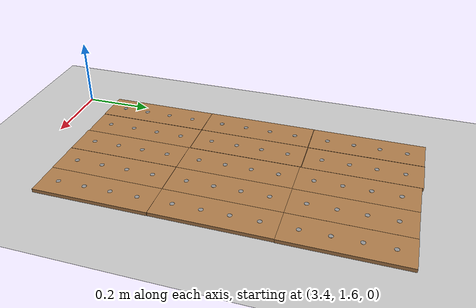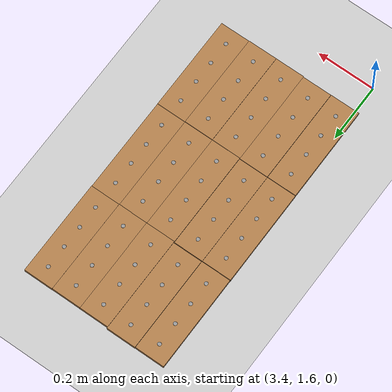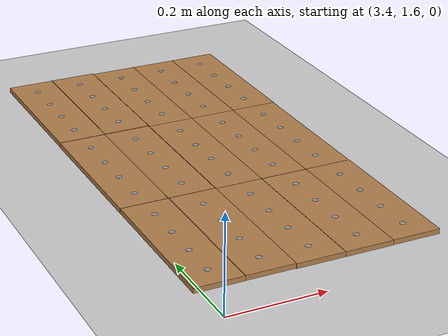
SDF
<sdf version="1.7">
 <world name="default">
  <model name="ground_plane">
   <static>1</static>
   <link name="link">
    <collision name="collision">
     <geometry><plane><normal>0 0 1</normal><size>100 100</size></plane></geometry>
     <surface><friction><ode><mu>100</mu><mu2>50</mu2></ode></friction></surface>
    </collision>
    <visual name="visual">
     <cast_shadows>0</cast_shadows>
     <geometry><plane><normal>0 0 1</normal><size>100 100</size></plane></geometry>
     <material>
      <script><uri>file://media/materials/scripts/gazebo.material</uri><name>Gazebo/Grey</name></script>
     </material>
    </visual>
   </link>
  </model>
  <model name="wooden_board_clone_3">
   <link name="base">
    <pose>0 0 0.00523 0 -0 0</pose>
    <inertial>
     <mass>0.2765</mass>
     <inertia>
      <ixx>0.0025148</ixx>
      <ixy>0</ixy>
      <ixz>0</ixz>
      <iyy>0.00024037</iyy>
      <iyz>0</iyz>
      <izz>0.00275013</izz>
     </inertia>
    </inertial>
    <collision name="collision">
     <geometry><box><size>0.1016 0.3302 0.01046</size></box></geometry>
     <surface>
      <contact>
       <poissons_ratio>0.347</poissons_ratio>
       <elastic_modulus>8.8e+09</elastic_modulus>
       <ode><kp>100000</kp><kd>100</kd><max_vel>100</max_vel><min_depth>0.001</min_depth></ode>
      </contact>
      <friction>
       <torsional>
        <coefficient>1</coefficient>
        <use_patch_radius>0</use_patch_radius>
        <surface_radius>0.01</surface_radius>
       </torsional>
      </friction>
     </surface>
    </collision>
    <visual name="visual">
     <geometry><box><size>0.1016 0.3302 0.01046</size></box></geometry>
     <material>
      <script><uri>file://media/materials/scripts/gazebo.material</uri><name>Gazebo/Wood</name></script>
     </material>
    </visual>
    <visual name="tee_nut_1">
     <pose>0 -0.116 0 0 -0 0</pose>
     <geometry><cylinder><radius>0.00635</radius><length>0.0105646</length></cylinder></geometry>
     <material>
      <script><uri>file://media/materials/scripts/gazebo.material</uri><name>Gazebo/Grey</name></script>
     </material>
    </visual>
    <visual name="tee_nut_2">
     <pose>0 -0.038 0 0 -0 0</pose>
     <geometry><cylinder><radius>0.00635</radius><length>0.0105646</length></cylinder></geometry>
     <material>
      <script><uri>file://media/materials/scripts/gazebo.material</uri><name>Gazebo/Grey</name></script>
     </material>
    </visual>
    <visual name="tee_nut_3">
     <pose>0 0.038 0 0 -0 0</pose>
     <geometry><cylinder><radius>0.00635</radius><length>0.0105646</length></cylinder></geometry>
     <material>
      <script><uri>file://media/materials/scripts/gazebo.material</uri><name>Gazebo/Grey</name></script>
     </material>
    </visual>
    <visual name="tee_nut_4">
     <pose>0 0.116 0 0 -0 0</pose>
     <geometry><cylinder><radius>0.00635</radius><length>0.0105646</length></cylinder></geometry>
     <material>
      <script><uri>file://media/materials/scripts/gazebo.material</uri><name>Gazebo/Grey</name></script>
     </material>
    </visual>
   </link>
   <pose>3.4371 1.85953 -0.001007 0 -0 1e-06</pose>
  </model>
  <model name="wooden_board_clone_5">
   <link name="base">
    <pose>0 0 0.00523 0 -0 0</pose>
    <inertial>
     <mass>0.2765</mass>
     <inertia>
      <ixx>0.0025148</ixx>
      <ixy>0</ixy>
      <ixz>0</ixz>
      <iyy>0.00024037</iyy>
      <iyz>0</iyz>
      <izz>0.00275013</izz>
     </inertia>
    </inertial>
    <collision name="collision">
     <geometry><box><size>0.1016 0.3302 0.01046</size></box></geometry>
     <surface>
      <contact>
       <poissons_ratio>0.347</poissons_ratio>
       <elastic_modulus>8.8e+09</elastic_modulus>
       <ode><kp>100000</kp><kd>100</kd><max_vel>100</max_vel><min_depth>0.001</min_depth></ode>
      </contact>
      <friction>
       <torsional>
        <coefficient>1</coefficient>
        <use_patch_radius>0</use_patch_radius>
        <surface_radius>0.01</surface_radius>
       </torsional>
      </friction>
     </surface>
    </collision>
    <visual name="visual">
     <geometry><box><size>0.1016 0.3302 0.01046</size></box></geometry>
     <material>
      <script><uri>file://media/materials/scripts/gazebo.material</uri><name>Gazebo/Wood</name></script>
     </material>
    </visual>
    <visual name="tee_nut_1">
     <pose>0 -0.116 0 0 -0 0</pose>
     <geometry><cylinder><radius>0.00635</radius><length>0.0105646</length></cylinder></geometry>
     <material>
      <script><uri>file://media/materials/scripts/gazebo.material</uri><name>Gazebo/Grey</name></script>
     </material>
    </visual>
    <visual name="tee_nut_2">
     <pose>0 -0.038 0 0 -0 0</pose>
     <geometry><cylinder><radius>0.00635</radius><length>0.0105646</length></cylinder></geometry>
     <material>
      <script><uri>file://media/materials/scripts/gazebo.material</uri><name>Gazebo/Grey</name></script>
     </material>
    </visual>
    <visual name="tee_nut_3">
     <pose>0 0.038 0 0 -0 0</pose>
     <geometry><cylinder><radius>0.00635</radius><length>0.0105646</length></cylinder></geometry>
     <material>
      <script><uri>file://media/materials/scripts/gazebo.material</uri><name>Gazebo/Grey</name></script>
     </material>
    </visual>
    <visual name="tee_nut_4">
     <pose>0 0.116 0 0 -0 0</pose>
     <geometry><cylinder><radius>0.00635</radius><length>0.0105646</length></cylinder></geometry>
     <material>
      <script><uri>file://media/materials/scripts/gazebo.material</uri><name>Gazebo/Grey</name></script>
     </material>
    </visual>
   </link>
   <pose>3.64062 1.85795 -0.001007 0 -0 0</pose>
  </model>
  <model name="wooden_board_clone_6">
   <link name="base">
    <pose>0 0 0.00523 0 -0 0</pose>
    <inertial>
     <mass>0.2765</mass>
     <inertia>
      <ixx>0.0025148</ixx>
      <ixy>0</ixy>
      <ixz>0</ixz>
      <iyy>0.00024037</iyy>
      <iyz>0</iyz>
      <izz>0.00275013</izz>
     </inertia>
    </inertial>
    <collision name="collision">
     <geometry><box><size>0.1016 0.3302 0.01046</size></box></geometry>
     <surface>
      <contact>
       <poissons_ratio>0.347</poissons_ratio>
       <elastic_modulus>8.8e+09</elastic_modulus>
       <ode><kp>100000</kp><kd>100</kd><max_vel>100</max_vel><min_depth>0.001</min_depth></ode>
      </contact>
      <friction>
       <torsional>
        <coefficient>1</coefficient>
        <use_patch_radius>0</use_patch_radius>
        <surface_radius>0.01</surface_radius>
       </torsional>
      </friction>
     </surface>
    </collision>
    <visual name="visual">
     <geometry><box><size>0.1016 0.3302 0.01046</size></box></geometry>
     <material>
      <script><uri>file://media/materials/scripts/gazebo.material</uri><name>Gazebo/Wood</name></script>
     </material>
    </visual>
    <visual name="tee_nut_1">
     <pose>0 -0.116 0 0 -0 0</pose>
     <geometry><cylinder><radius>0.00635</radius><length>0.0105646</length></cylinder></geometry>
     <material>
      <script><uri>file://media/materials/scripts/gazebo.material</uri><name>Gazebo/Grey</name></script>
     </material>
    </visual>
    <visual name="tee_nut_2">
     <pose>0 -0.038 0 0 -0 0</pose>
     <geometry><cylinder><radius>0.00635</radius><length>0.0105646</length></cylinder></geometry>
     <material>
      <script><uri>file://media/materials/scripts/gazebo.material</uri><name>Gazebo/Grey</name></script>
     </material>
    </visual>
    <visual name="tee_nut_3">
     <pose>0 0.038 0 0 -0 0</pose>
     <geometry><cylinder><radius>0.00635</radius><length>0.0105646</length></cylinder></geometry>
     <material>
      <script><uri>file://media/materials/scripts/gazebo.material</uri><name>Gazebo/Grey</name></script>
     </material>
    </visual>
    <visual name="tee_nut_4">
     <pose>0 0.116 0 0 -0 0</pose>
     <geometry><cylinder><radius>0.00635</radius><length>0.0105646</length></cylinder></geometry>
     <material>
      <script><uri>file://media/materials/scripts/gazebo.material</uri><name>Gazebo/Grey</name></script>
     </material>
    </visual>
   </link>
   <pose>3.74259 1.85781 -0.001007 0 -0 0</pose>
  </model>
  <model name="wooden_board_clone_7">
   <link name="base">
    <pose>0 0 0.00523 0 -0 0</pose>
    <inertial>
     <mass>0.2765</mass>
     <inertia>
      <ixx>0.0025148</ixx>
      <ixy>0</ixy>
      <ixz>0</ixz>
      <iyy>0.00024037</iyy>
      <iyz>0</iyz>
      <izz>0.00275013</izz>
     </inertia>
    </inertial>
    <collision name="collision">
     <geometry><box><size>0.1016 0.3302 0.01046</size></box></geometry>
     <surface>
      <contact>
       <poissons_ratio>0.347</poissons_ratio>
       <elastic_modulus>8.8e+09</elastic_modulus>
       <ode><kp>100000</kp><kd>100</kd><max_vel>100</max_vel><min_depth>0.001</min_depth></ode>
      </contact>
      <friction>
       <torsional>
        <coefficient>1</coefficient>
        <use_patch_radius>0</use_patch_radius>
        <surface_radius>0.01</surface_radius>
       </torsional>
      </friction>
     </surface>
    </collision>
    <visual name="visual">
     <geometry><box><size>0.1016 0.3302 0.01046</size></box></geometry>
     <material>
      <script><uri>file://media/materials/scripts/gazebo.material</uri><name>Gazebo/Wood</name></script>
     </material>
    </visual>
    <visual name="tee_nut_1">
     <pose>0 -0.116 0 0 -0 0</pose>
     <geometry><cylinder><radius>0.00635</radius><length>0.0105646</length></cylinder></geometry>
     <material>
      <script><uri>file://media/materials/scripts/gazebo.material</uri><name>Gazebo/Grey</name></script>
     </material>
    </visual>
    <visual name="tee_nut_2">
     <pose>0 -0.038 0 0 -0 0</pose>
     <geometry><cylinder><radius>0.00635</radius><length>0.0105646</length></cylinder></geometry>
     <material>
      <script><uri>file://media/materials/scripts/gazebo.material</uri><name>Gazebo/Grey</name></script>
     </material>
    </visual>
    <visual name="tee_nut_3">
     <pose>0 0.038 0 0 -0 0</pose>
     <geometry><cylinder><radius>0.00635</radius><length>0.0105646</length></cylinder></geometry>
     <material>
      <script><uri>file://media/materials/scripts/gazebo.material</uri><name>Gazebo/Grey</name></script>
     </material>
    </visual>
    <visual name="tee_nut_4">
     <pose>0 0.116 0 0 -0 0</pose>
     <geometry><cylinder><radius>0.00635</radius><length>0.0105646</length></cylinder></geometry>
     <material>
      <script><uri>file://media/materials/scripts/gazebo.material</uri><name>Gazebo/Grey</name></script>
     </material>
    </visual>
   </link>
   <pose>3.84384 1.85854 -0.001007 0 -0 0</pose>
  </model>
  <model name="wooden_board_clone_8">
   <link name="base">
    <pose>0 0 0.00523 0 -0 0</pose>
    <inertial>
     <mass>0.2765</mass>
     <inertia>
      <ixx>0.0025148</ixx>
      <ixy>0</ixy>
      <ixz>0</ixz>
      <iyy>0.00024037</iyy>
      <iyz>0</iyz>
      <izz>0.00275013</izz>
     </inertia>
    </inertial>
    <collision name="collision">
     <geometry><box><size>0.1016 0.3302 0.01046</size></box></geometry>
     <surface>
      <contact>
       <poissons_ratio>0.347</poissons_ratio>
       <elastic_modulus>8.8e+09</elastic_modulus>
       <ode><kp>100000</kp><kd>100</kd><max_vel>100</max_vel><min_depth>0.001</min_depth></ode>
      </contact>
      <friction>
       <torsional>
        <coefficient>1</coefficient>
        <use_patch_radius>0</use_patch_radius>
        <surface_radius>0.01</surface_radius>
       </torsional>
      </friction>
     </surface>
    </collision>
    <visual name="visual">
     <geometry><box><size>0.1016 0.3302 0.01046</size></box></geometry>
     <material>
      <script><uri>file://media/materials/scripts/gazebo.material</uri><name>Gazebo/Wood</name></script>
     </material>
    </visual>
    <visual name="tee_nut_1">
     <pose>0 -0.116 0 0 -0 0</pose>
     <geometry><cylinder><radius>0.00635</radius><length>0.0105646</length></cylinder></geometry>
     <material>
      <script><uri>file://media/materials/scripts/gazebo.material</uri><name>Gazebo/Grey</name></script>
     </material>
    </visual>
    <visual name="tee_nut_2">
     <pose>0 -0.038 0 0 -0 0</pose>
     <geometry><cylinder><radius>0.00635</radius><length>0.0105646</length></cylinder></geometry>
     <material>
      <script><uri>file://media/materials/scripts/gazebo.material</uri><name>Gazebo/Grey</name></script>
     </material>
    </visual>
    <visual name="tee_nut_3">
     <pose>0 0.038 0 0 -0 0</pose>
     <geometry><cylinder><radius>0.00635</radius><length>0.0105646</length></cylinder></geometry>
     <material>
      <script><uri>file://media/materials/scripts/gazebo.material</uri><name>Gazebo/Grey</name></script>
     </material>
    </visual>
    <visual name="tee_nut_4">
     <pose>0 0.116 0 0 -0 0</pose>
     <geometry><cylinder><radius>0.00635</radius><length>0.0105646</length></cylinder></geometry>
     <material>
      <script><uri>file://media/materials/scripts/gazebo.material</uri><name>Gazebo/Grey</name></script>
     </material>
    </visual>
   </link>
   <pose>3.84334 2.18906 -0.001007 0 -0 0</pose>
  </model>
  <model name="wooden_board_clone_9">
   <link name="base">
    <pose>0 0 0.00523 0 -0 0</pose>
    <inertial>
     <mass>0.2765</mass>
     <inertia>
      <ixx>0.0025148</ixx>
      <ixy>0</ixy>
      <ixz>0</ixz>
      <iyy>0.00024037</iyy>
      <iyz>0</iyz>
      <izz>0.00275013</izz>
     </inertia>
    </inertial>
    <collision name="collision">
     <geometry><box><size>0.1016 0.3302 0.01046</size></box></geometry>
     <surface>
      <contact>
       <poissons_ratio>0.347</poissons_ratio>
       <elastic_modulus>8.8e+09</elastic_modulus>
       <ode><kp>100000</kp><kd>100</kd><max_vel>100</max_vel><min_depth>0.001</min_depth></ode>
      </contact>
      <friction>
       <torsional>
        <coefficient>1</coefficient>
        <use_patch_radius>0</use_patch_radius>
        <surface_radius>0.01</surface_radius>
       </torsional>
      </friction>
     </surface>
    </collision>
    <visual name="visual">
     <geometry><box><size>0.1016 0.3302 0.01046</size></box></geometry>
     <material>
      <script><uri>file://media/materials/scripts/gazebo.material</uri><name>Gazebo/Wood</name></script>
     </material>
    </visual>
    <visual name="tee_nut_1">
     <pose>0 -0.116 0 0 -0 0</pose>
     <geometry><cylinder><radius>0.00635</radius><length>0.0105646</length></cylinder></geometry>
     <material>
      <script><uri>file://media/materials/scripts/gazebo.material</uri><name>Gazebo/Grey</name></script>
     </material>
    </visual>
    <visual name="tee_nut_2">
     <pose>0 -0.038 0 0 -0 0</pose>
     <geometry><cylinder><radius>0.00635</radius><length>0.0105646</length></cylinder></geometry>
     <material>
      <script><uri>file://media/materials/scripts/gazebo.material</uri><name>Gazebo/Grey</name></script>
     </material>
    </visual>
    <visual name="tee_nut_3">
     <pose>0 0.038 0 0 -0 0</pose>
     <geometry><cylinder><radius>0.00635</radius><length>0.0105646</length></cylinder></geometry>
     <material>
      <script><uri>file://media/materials/scripts/gazebo.material</uri><name>Gazebo/Grey</name></script>
     </material>
    </visual>
    <visual name="tee_nut_4">
     <pose>0 0.116 0 0 -0 0</pose>
     <geometry><cylinder><radius>0.00635</radius><length>0.0105646</length></cylinder></geometry>
     <material>
      <script><uri>file://media/materials/scripts/gazebo.material</uri><name>Gazebo/Grey</name></script>
     </material>
    </visual>
   </link>
   <pose>3.74249 2.18883 -0.001007 0 -0 0</pose>
  </model>
  <model name="wooden_board_clone_10">
   <link name="base">
    <pose>0 0 0.00523 0 -0 0</pose>
    <inertial>
     <mass>0.2765</mass>
     <inertia>
      <ixx>0.0025148</ixx>
      <ixy>0</ixy>
      <ixz>0</ixz>
      <iyy>0.00024037</iyy>
      <iyz>0</iyz>
      <izz>0.00275013</izz>
     </inertia>
    </inertial>
    <collision name="collision">
     <geometry><box><size>0.1016 0.3302 0.01046</size></box></geometry>
     <surface>
      <contact>
       <poissons_ratio>0.347</poissons_ratio>
       <elastic_modulus>8.8e+09</elastic_modulus>
       <ode><kp>100000</kp><kd>100</kd><max_vel>100</max_vel><min_depth>0.001</min_depth></ode>
      </contact>
      <friction>
       <torsional>
        <coefficient>1</coefficient>
        <use_patch_radius>0</use_patch_radius>
        <surface_radius>0.01</surface_radius>
       </torsional>
      </friction>
     </surface>
    </collision>
    <visual name="visual">
     <geometry><box><size>0.1016 0.3302 0.01046</size></box></geometry>
     <material>
      <script><uri>file://media/materials/scripts/gazebo.material</uri><name>Gazebo/Wood</name></script>
     </material>
    </visual>
    <visual name="tee_nut_1">
     <pose>0 -0.116 0 0 -0 0</pose>
     <geometry><cylinder><radius>0.00635</radius><length>0.0105646</length></cylinder></geometry>
     <material>
      <script><uri>file://media/materials/scripts/gazebo.material</uri><name>Gazebo/Grey</name></script>
     </material>
    </visual>
    <visual name="tee_nut_2">
     <pose>0 -0.038 0 0 -0 0</pose>
     <geometry><cylinder><radius>0.00635</radius><length>0.0105646</length></cylinder></geometry>
     <material>
      <script><uri>file://media/materials/scripts/gazebo.material</uri><name>Gazebo/Grey</name></script>
     </material>
    </visual>
    <visual name="tee_nut_3">
     <pose>0 0.038 0 0 -0 0</pose>
     <geometry><cylinder><radius>0.00635</radius><length>0.0105646</length></cylinder></geometry>
     <material>
      <script><uri>file://media/materials/scripts/gazebo.material</uri><name>Gazebo/Grey</name></script>
     </material>
    </visual>
    <visual name="tee_nut_4">
     <pose>0 0.116 0 0 -0 0</pose>
     <geometry><cylinder><radius>0.00635</radius><length>0.0105646</length></cylinder></geometry>
     <material>
      <script><uri>file://media/materials/scripts/gazebo.material</uri><name>Gazebo/Grey</name></script>
     </material>
    </visual>
   </link>
   <pose>3.64116 2.18846 -0.001007 0 -0 0</pose>
  </model>
  <model name="wooden_board_clone_12">
   <link name="base">
    <pose>0 0 0.00523 0 -0 0</pose>
    <inertial>
     <mass>0.2765</mass>
     <inertia>
      <ixx>0.0025148</ixx>
      <ixy>0</ixy>
      <ixz>0</ixz>
      <iyy>0.00024037</iyy>
      <iyz>0</iyz>
      <izz>0.00275013</izz>
     </inertia>
    </inertial>
    <collision name="collision">
     <geometry><box><size>0.1016 0.3302 0.01046</size></box></geometry>
     <surface>
      <contact>
       <poissons_ratio>0.347</poissons_ratio>
       <elastic_modulus>8.8e+09</elastic_modulus>
       <ode><kp>100000</kp><kd>100</kd><max_vel>100</max_vel><min_depth>0.001</min_depth></ode>
      </contact>
      <friction>
       <torsional>
        <coefficient>1</coefficient>
        <use_patch_radius>0</use_patch_radius>
        <surface_radius>0.01</surface_radius>
       </torsional>
      </friction>
     </surface>
    </collision>
    <visual name="visual">
     <geometry><box><size>0.1016 0.3302 0.01046</size></box></geometry>
     <material>
      <script><uri>file://media/materials/scripts/gazebo.material</uri><name>Gazebo/Wood</name></script>
     </material>
    </visual>
    <visual name="tee_nut_1">
     <pose>0 -0.116 0 0 -0 0</pose>
     <geometry><cylinder><radius>0.00635</radius><length>0.0105646</length></cylinder></geometry>
     <material>
      <script><uri>file://media/materials/scripts/gazebo.material</uri><name>Gazebo/Grey</name></script>
     </material>
    </visual>
    <visual name="tee_nut_2">
     <pose>0 -0.038 0 0 -0 0</pose>
     <geometry><cylinder><radius>0.00635</radius><length>0.0105646</length></cylinder></geometry>
     <material>
      <script><uri>file://media/materials/scripts/gazebo.material</uri><name>Gazebo/Grey</name></script>
     </material>
    </visual>
    <visual name="tee_nut_3">
     <pose>0 0.038 0 0 -0 0</pose>
     <geometry><cylinder><radius>0.00635</radius><length>0.0105646</length></cylinder></geometry>
     <material>
      <script><uri>file://media/materials/scripts/gazebo.material</uri><name>Gazebo/Grey</name></script>
     </material>
    </visual>
    <visual name="tee_nut_4">
     <pose>0 0.116 0 0 -0 0</pose>
     <geometry><cylinder><radius>0.00635</radius><length>0.0105646</length></cylinder></geometry>
     <material>
      <script><uri>file://media/materials/scripts/gazebo.material</uri><name>Gazebo/Grey</name></script>
     </material>
    </visual>
   </link>
   <pose>3.43684 2.19065 -0.001007 0 -0 0</pose>
  </model>
  <model name="wooden_board_clone_18">
   <link name="base">
    <pose>0 0 0.00523 0 -0 0</pose>
    <inertial>
     <mass>0.2765</mass>
     <inertia>
      <ixx>0.0025148</ixx>
      <ixy>0</ixy>
      <ixz>0</ixz>
      <iyy>0.00024037</iyy>
      <iyz>0</iyz>
      <izz>0.00275013</izz>
     </inertia>
    </inertial>
    <collision name="collision">
     <geometry><box><size>0.1016 0.3302 0.01046</size></box></geometry>
     <surface>
      <contact>
       <poissons_ratio>0.347</poissons_ratio>
       <elastic_modulus>8.8e+09</elastic_modulus>
       <ode><kp>100000</kp><kd>100</kd><max_vel>100</max_vel><min_depth>0.001</min_depth></ode>
      </contact>
      <friction>
       <torsional>
        <coefficient>1</coefficient>
        <use_patch_radius>0</use_patch_radius>
        <surface_radius>0.01</surface_radius>
       </torsional>
      </friction>
     </surface>
    </collision>
    <visual name="visual">
     <geometry><box><size>0.1016 0.3302 0.01046</size></box></geometry>
     <material>
      <script><uri>file://media/materials/scripts/gazebo.material</uri><name>Gazebo/Wood</name></script>
     </material>
    </visual>
    <visual name="tee_nut_1">
     <pose>0 -0.116 0 0 -0 0</pose>
     <geometry><cylinder><radius>0.00635</radius><length>0.0105646</length></cylinder></geometry>
     <material>
      <script><uri>file://media/materials/scripts/gazebo.material</uri><name>Gazebo/Grey</name></script>
     </material>
    </visual>
    <visual name="tee_nut_2">
     <pose>0 -0.038 0 0 -0 0</pose>
     <geometry><cylinder><radius>0.00635</radius><length>0.0105646</length></cylinder></geometry>
     <material>
      <script><uri>file://media/materials/scripts/gazebo.material</uri><name>Gazebo/Grey</name></script>
     </material>
    </visual>
    <visual name="tee_nut_3">
     <pose>0 0.038 0 0 -0 0</pose>
     <geometry><cylinder><radius>0.00635</radius><length>0.0105646</length></cylinder></geometry>
     <material>
      <script><uri>file://media/materials/scripts/gazebo.material</uri><name>Gazebo/Grey</name></script>
     </material>
    </visual>
    <visual name="tee_nut_4">
     <pose>0 0.116 0 0 -0 0</pose>
     <geometry><cylinder><radius>0.00635</radius><length>0.0105646</length></cylinder></geometry>
     <material>
      <script><uri>file://media/materials/scripts/gazebo.material</uri><name>Gazebo/Grey</name></script>
     </material>
    </visual>
   </link>
   <pose>3.84437 2.51905 -0.001007 0 0 -5.3e-05</pose>
  </model>
  <model name="wooden_board_clone_19">
   <link name="base">
    <pose>0 0 0.00523 0 -0 0</pose>
    <inertial>
     <mass>0.2765</mass>
     <inertia>
      <ixx>0.0025148</ixx>
      <ixy>0</ixy>
      <ixz>0</ixz>
      <iyy>0.00024037</iyy>
      <iyz>0</iyz>
      <izz>0.00275013</izz>
     </inertia>
    </inertial>
    <collision name="collision">
     <geometry><box><size>0.1016 0.3302 0.01046</size></box></geometry>
     <surface>
      <contact>
       <poissons_ratio>0.347</poissons_ratio>
       <elastic_modulus>8.8e+09</elastic_modulus>
       <ode><kp>100000</kp><kd>100</kd><max_vel>100</max_vel><min_depth>0.001</min_depth></ode>
      </contact>
      <friction>
       <torsional>
        <coefficient>1</coefficient>
        <use_patch_radius>0</use_patch_radius>
        <surface_radius>0.01</surface_radius>
       </torsional>
      </friction>
     </surface>
    </collision>
    <visual name="visual">
     <geometry><box><size>0.1016 0.3302 0.01046</size></box></geometry>
     <material>
      <script><uri>file://media/materials/scripts/gazebo.material</uri><name>Gazebo/Wood</name></script>
     </material>
    </visual>
    <visual name="tee_nut_1">
     <pose>0 -0.116 0 0 -0 0</pose>
     <geometry><cylinder><radius>0.00635</radius><length>0.0105646</length></cylinder></geometry>
     <material>
      <script><uri>file://media/materials/scripts/gazebo.material</uri><name>Gazebo/Grey</name></script>
     </material>
    </visual>
    <visual name="tee_nut_2">
     <pose>0 -0.038 0 0 -0 0</pose>
     <geometry><cylinder><radius>0.00635</radius><length>0.0105646</length></cylinder></geometry>
     <material>
      <script><uri>file://media/materials/scripts/gazebo.material</uri><name>Gazebo/Grey</name></script>
     </material>
    </visual>
    <visual name="tee_nut_3">
     <pose>0 0.038 0 0 -0 0</pose>
     <geometry><cylinder><radius>0.00635</radius><length>0.0105646</length></cylinder></geometry>
     <material>
      <script><uri>file://media/materials/scripts/gazebo.material</uri><name>Gazebo/Grey</name></script>
     </material>
    </visual>
    <visual name="tee_nut_4">
     <pose>0 0.116 0 0 -0 0</pose>
     <geometry><cylinder><radius>0.00635</radius><length>0.0105646</length></cylinder></geometry>
     <material>
      <script><uri>file://media/materials/scripts/gazebo.material</uri><name>Gazebo/Grey</name></script>
     </material>
    </visual>
   </link>
   <pose>3.74273 2.51838 -0.001007 0 -0 -5.3e-05</pose>
  </model>
  <model name="wooden_board_clone_20">
   <link name="base">
    <pose>0 0 0.00523 0 -0 0</pose>
    <inertial>
     <mass>0.2765</mass>
     <inertia>
      <ixx>0.0025148</ixx>
      <ixy>0</ixy>
      <ixz>0</ixz>
      <iyy>0.00024037</iyy>
      <iyz>0</iyz>
      <izz>0.00275013</izz>
     </inertia>
    </inertial>
    <collision name="collision">
     <geometry><box><size>0.1016 0.3302 0.01046</size></box></geometry>
     <surface>
      <contact>
       <poissons_ratio>0.347</poissons_ratio>
       <elastic_modulus>8.8e+09</elastic_modulus>
       <ode><kp>100000</kp><kd>100</kd><max_vel>100</max_vel><min_depth>0.001</min_depth></ode>
      </contact>
      <friction>
       <torsional>
        <coefficient>1</coefficient>
        <use_patch_radius>0</use_patch_radius>
        <surface_radius>0.01</surface_radius>
       </torsional>
      </friction>
     </surface>
    </collision>
    <visual name="visual">
     <geometry><box><size>0.1016 0.3302 0.01046</size></box></geometry>
     <material>
      <script><uri>file://media/materials/scripts/gazebo.material</uri><name>Gazebo/Wood</name></script>
     </material>
    </visual>
    <visual name="tee_nut_1">
     <pose>0 -0.116 0 0 -0 0</pose>
     <geometry><cylinder><radius>0.00635</radius><length>0.0105646</length></cylinder></geometry>
     <material>
      <script><uri>file://media/materials/scripts/gazebo.material</uri><name>Gazebo/Grey</name></script>
     </material>
    </visual>
    <visual name="tee_nut_2">
     <pose>0 -0.038 0 0 -0 0</pose>
     <geometry><cylinder><radius>0.00635</radius><length>0.0105646</length></cylinder></geometry>
     <material>
      <script><uri>file://media/materials/scripts/gazebo.material</uri><name>Gazebo/Grey</name></script>
     </material>
    </visual>
    <visual name="tee_nut_3">
     <pose>0 0.038 0 0 -0 0</pose>
     <geometry><cylinder><radius>0.00635</radius><length>0.0105646</length></cylinder></geometry>
     <material>
      <script><uri>file://media/materials/scripts/gazebo.material</uri><name>Gazebo/Grey</name></script>
     </material>
    </visual>
    <visual name="tee_nut_4">
     <pose>0 0.116 0 0 -0 0</pose>
     <geometry><cylinder><radius>0.00635</radius><length>0.0105646</length></cylinder></geometry>
     <material>
      <script><uri>file://media/materials/scripts/gazebo.material</uri><name>Gazebo/Grey</name></script>
     </material>
    </visual>
   </link>
   <pose>3.64189 2.51864 -0.001007 -0 -0 -5.3e-05</pose>
  </model>
  <model name="wooden_board_clone_11">
   <link name="base">
    <pose>0 0 0.00523 0 -0 0</pose>
    <inertial>
     <mass>0.2765</mass>
     <inertia>
      <ixx>0.0025148</ixx>
      <ixy>0</ixy>
      <ixz>0</ixz>
      <iyy>0.00024037</iyy>
      <iyz>0</iyz>
      <izz>0.00275013</izz>
     </inertia>
    </inertial>
    <collision name="collision">
     <geometry><box><size>0.1016 0.3302 0.01046</size></box></geometry>
     <surface>
      <contact>
       <poissons_ratio>0.347</poissons_ratio>
       <elastic_modulus>8.8e+09</elastic_modulus>
       <ode><kp>100000</kp><kd>100</kd><max_vel>100</max_vel><min_depth>0.001</min_depth></ode>
      </contact>
      <friction>
       <torsional>
        <coefficient>1</coefficient>
        <use_patch_radius>0</use_patch_radius>
        <surface_radius>0.01</surface_radius>
       </torsional>
      </friction>
     </surface>
    </collision>
    <visual name="visual">
     <geometry><box><size>0.1016 0.3302 0.01046</size></box></geometry>
     <material>
      <script><uri>file://media/materials/scripts/gazebo.material</uri><name>Gazebo/Wood</name></script>
     </material>
    </visual>
    <visual name="tee_nut_1">
     <pose>0 -0.116 0 0 -0 0</pose>
     <geometry><cylinder><radius>0.00635</radius><length>0.0105646</length></cylinder></geometry>
     <material>
      <script><uri>file://media/materials/scripts/gazebo.material</uri><name>Gazebo/Grey</name></script>
     </material>
    </visual>
    <visual name="tee_nut_2">
     <pose>0 -0.038 0 0 -0 0</pose>
     <geometry><cylinder><radius>0.00635</radius><length>0.0105646</length></cylinder></geometry>
     <material>
      <script><uri>file://media/materials/scripts/gazebo.material</uri><name>Gazebo/Grey</name></script>
     </material>
    </visual>
    <visual name="tee_nut_3">
     <pose>0 0.038 0 0 -0 0</pose>
     <geometry><cylinder><radius>0.00635</radius><length>0.0105646</length></cylinder></geometry>
     <material>
      <script><uri>file://media/materials/scripts/gazebo.material</uri><name>Gazebo/Grey</name></script>
     </material>
    </visual>
    <visual name="tee_nut_4">
     <pose>0 0.116 0 0 -0 0</pose>
     <geometry><cylinder><radius>0.00635</radius><length>0.0105646</length></cylinder></geometry>
     <material>
      <script><uri>file://media/materials/scripts/gazebo.material</uri><name>Gazebo/Grey</name></script>
     </material>
    </visual>
   </link>
   <pose>3.53881 2.19103 -0.001007 0 0 -5.4e-05</pose>
  </model>
  <model name="wooden_board_clone_4">
   <link name="base">
    <pose>0 0 0.00523 0 -0 0</pose>
    <inertial>
     <mass>0.2765</mass>
     <inertia>
      <ixx>0.0025148</ixx>
      <ixy>0</ixy>
      <ixz>0</ixz>
      <iyy>0.00024037</iyy>
      <iyz>0</iyz>
      <izz>0.00275013</izz>
     </inertia>
    </inertial>
    <collision name="collision">
     <geometry><box><size>0.1016 0.3302 0.01046</size></box></geometry>
     <surface>
      <contact>
       <poissons_ratio>0.347</poissons_ratio>
       <elastic_modulus>8.8e+09</elastic_modulus>
       <ode><kp>100000</kp><kd>100</kd><max_vel>100</max_vel><min_depth>0.001</min_depth></ode>
      </contact>
      <friction>
       <torsional>
        <coefficient>1</coefficient>
        <use_patch_radius>0</use_patch_radius>
        <surface_radius>0.01</surface_radius>
       </torsional>
      </friction>
     </surface>
    </collision>
    <visual name="visual">
     <geometry><box><size>0.1016 0.3302 0.01046</size></box></geometry>
     <material>
      <script><uri>file://media/materials/scripts/gazebo.material</uri><name>Gazebo/Wood</name></script>
     </material>
    </visual>
    <visual name="tee_nut_1">
     <pose>0 -0.116 0 0 -0 0</pose>
     <geometry><cylinder><radius>0.00635</radius><length>0.0105646</length></cylinder></geometry>
     <material>
      <script><uri>file://media/materials/scripts/gazebo.material</uri><name>Gazebo/Grey</name></script>
     </material>
    </visual>
    <visual name="tee_nut_2">
     <pose>0 -0.038 0 0 -0 0</pose>
     <geometry><cylinder><radius>0.00635</radius><length>0.0105646</length></cylinder></geometry>
     <material>
      <script><uri>file://media/materials/scripts/gazebo.material</uri><name>Gazebo/Grey</name></script>
     </material>
    </visual>
    <visual name="tee_nut_3">
     <pose>0 0.038 0 0 -0 0</pose>
     <geometry><cylinder><radius>0.00635</radius><length>0.0105646</length></cylinder></geometry>
     <material>
      <script><uri>file://media/materials/scripts/gazebo.material</uri><name>Gazebo/Grey</name></script>
     </material>
    </visual>
    <visual name="tee_nut_4">
     <pose>0 0.116 0 0 -0 0</pose>
     <geometry><cylinder><radius>0.00635</radius><length>0.0105646</length></cylinder></geometry>
     <material>
      <script><uri>file://media/materials/scripts/gazebo.material</uri><name>Gazebo/Grey</name></script>
     </material>
    </visual>
   </link>
   <pose>3.53953 1.85994 -0.001007 -0 -0 -5.4e-05</pose>
  </model>
  <model name="wooden_board_clone_21">
   <link name="base">
    <pose>0 0 0.00523 0 -0 0</pose>
    <inertial>
     <mass>0.2765</mass>
     <inertia>
      <ixx>0.0025148</ixx>
      <ixy>0</ixy>
      <ixz>0</ixz>
      <iyy>0.00024037</iyy>
      <iyz>0</iyz>
      <izz>0.00275013</izz>
     </inertia>
    </inertial>
    <collision name="collision">
     <geometry><box><size>0.1016 0.3302 0.01046</size></box></geometry>
     <surface>
      <contact>
       <poissons_ratio>0.347</poissons_ratio>
       <elastic_modulus>8.8e+09</elastic_modulus>
       <ode><kp>100000</kp><kd>100</kd><max_vel>100</max_vel><min_depth>0.001</min_depth></ode>
      </contact>
      <friction>
       <torsional>
        <coefficient>1</coefficient>
        <use_patch_radius>0</use_patch_radius>
        <surface_radius>0.01</surface_radius>
       </torsional>
      </friction>
     </surface>
    </collision>
    <visual name="visual">
     <geometry><box><size>0.1016 0.3302 0.01046</size></box></geometry>
     <material>
      <script><uri>file://media/materials/scripts/gazebo.material</uri><name>Gazebo/Wood</name></script>
     </material>
    </visual>
    <visual name="tee_nut_1">
     <pose>0 -0.116 0 0 -0 0</pose>
     <geometry><cylinder><radius>0.00635</radius><length>0.0105646</length></cylinder></geometry>
     <material>
      <script><uri>file://media/materials/scripts/gazebo.material</uri><name>Gazebo/Grey</name></script>
     </material>
    </visual>
    <visual name="tee_nut_2">
     <pose>0 -0.038 0 0 -0 0</pose>
     <geometry><cylinder><radius>0.00635</radius><length>0.0105646</length></cylinder></geometry>
     <material>
      <script><uri>file://media/materials/scripts/gazebo.material</uri><name>Gazebo/Grey</name></script>
     </material>
    </visual>
    <visual name="tee_nut_3">
     <pose>0 0.038 0 0 -0 0</pose>
     <geometry><cylinder><radius>0.00635</radius><length>0.0105646</length></cylinder></geometry>
     <material>
      <script><uri>file://media/materials/scripts/gazebo.material</uri><name>Gazebo/Grey</name></script>
     </material>
    </visual>
    <visual name="tee_nut_4">
     <pose>0 0.116 0 0 -0 0</pose>
     <geometry><cylinder><radius>0.00635</radius><length>0.0105646</length></cylinder></geometry>
     <material>
      <script><uri>file://media/materials/scripts/gazebo.material</uri><name>Gazebo/Grey</name></script>
     </material>
    </visual>
   </link>
   <pose>3.53994 2.52291 -0.001007 0 0 -5.4e-05</pose>
  </model>
  <model name="wooden_board_clone_22">
   <link name="base">
    <pose>0 0 0.00523 0 -0 0</pose>
    <inertial>
     <mass>0.2765</mass>
     <inertia>
      <ixx>0.0025148</ixx>
      <ixy>0</ixy>
      <ixz>0</ixz>
      <iyy>0.00024037</iyy>
      <iyz>0</iyz>
      <izz>0.00275013</izz>
     </inertia>
    </inertial>
    <collision name="collision">
     <geometry><box><size>0.1016 0.3302 0.01046</size></box></geometry>
     <surface>
      <contact>
       <poissons_ratio>0.347</poissons_ratio>
       <elastic_modulus>8.8e+09</elastic_modulus>
       <ode><kp>100000</kp><kd>100</kd><max_vel>100</max_vel><min_depth>0.001</min_depth></ode>
      </contact>
      <friction>
       <torsional>
        <coefficient>1</coefficient>
        <use_patch_radius>0</use_patch_radius>
        <surface_radius>0.01</surface_radius>
       </torsional>
      </friction>
     </surface>
    </collision>
    <visual name="visual">
     <geometry><box><size>0.1016 0.3302 0.01046</size></box></geometry>
     <material>
      <script><uri>file://media/materials/scripts/gazebo.material</uri><name>Gazebo/Wood</name></script>
     </material>
    </visual>
    <visual name="tee_nut_1">
     <pose>0 -0.116 0 0 -0 0</pose>
     <geometry><cylinder><radius>0.00635</radius><length>0.0105646</length></cylinder></geometry>
     <material>
      <script><uri>file://media/materials/scripts/gazebo.material</uri><name>Gazebo/Grey</name></script>
     </material>
    </visual>
    <visual name="tee_nut_2">
     <pose>0 -0.038 0 0 -0 0</pose>
     <geometry><cylinder><radius>0.00635</radius><length>0.0105646</length></cylinder></geometry>
     <material>
      <script><uri>file://media/materials/scripts/gazebo.material</uri><name>Gazebo/Grey</name></script>
     </material>
    </visual>
    <visual name="tee_nut_3">
     <pose>0 0.038 0 0 -0 0</pose>
     <geometry><cylinder><radius>0.00635</radius><length>0.0105646</length></cylinder></geometry>
     <material>
      <script><uri>file://media/materials/scripts/gazebo.material</uri><name>Gazebo/Grey</name></script>
     </material>
    </visual>
    <visual name="tee_nut_4">
     <pose>0 0.116 0 0 -0 0</pose>
     <geometry><cylinder><radius>0.00635</radius><length>0.0105646</length></cylinder></geometry>
     <material>
      <script><uri>file://media/materials/scripts/gazebo.material</uri><name>Gazebo/Grey</name></script>
     </material>
    </visual>
   </link>
   <pose>3.43746 2.52207 -0.001007 0 0 -5.4e-05</pose>
  </model>
 </world>
</sdf>
